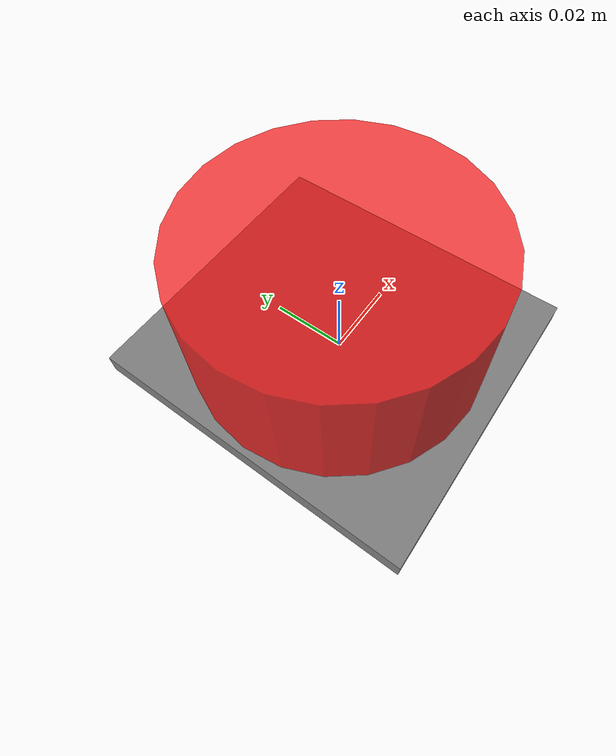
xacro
<?xml version="1.0"?>
<robot name="rplidar" xmlns:xacro="http://ros.org/wiki/xacro">

  <link name="rplidar_base">
    <visual>
      <origin xyz="0 0 0.003"/>
      <geometry>
        <box size="0.079 0.086 0.006"/>
      </geometry>
      <material name="support">
        <color rgba="0.5 0.5 0.5 1.0"/>
      </material>
    </visual>
    <visual>
      <origin xyz="0 0 0.023"/>
      <geometry>
        <cylinder radius="0.038" length="0.04"/>
      </geometry>
      <material name="lidar">
        <color rgba="1.0 0.0 0.0 0.7"/>
      </material>
    </visual>
    <collision>
      <origin xyz="0 0 0.003"/>
      <geometry>
        <box size="0.079 0.086 0.006"/>
      </geometry>
    </collision>
    <collision>
      <origin xyz="0 0 0.023"/>
      <geometry>
        <cylinder radius="0.038" length="0.04"/>
      </geometry>
    </collision>
  </link>

  <link name="laser_frame"/>

  <joint name="laser_joint" type="fixed">
    <origin xyz="0 0 0.0368" rpy="0 0 ${pi/2}"/>
    <parent link="rplidar_base"/>
    <child link="laser_frame"/>
  </joint>

</robot>
